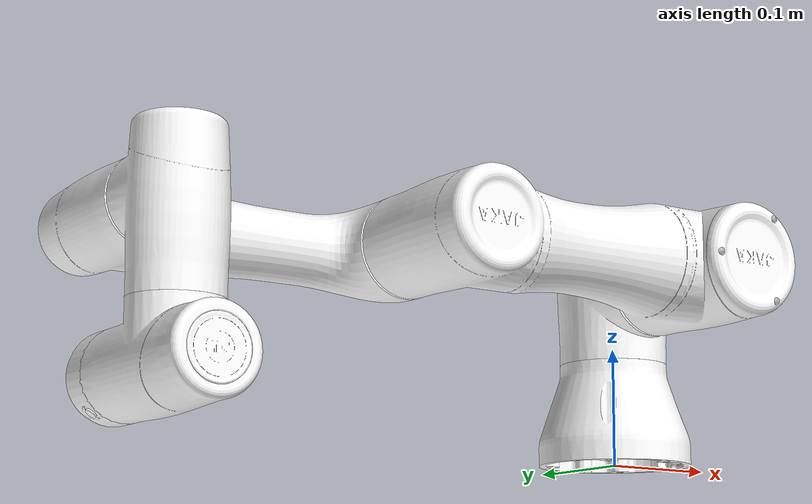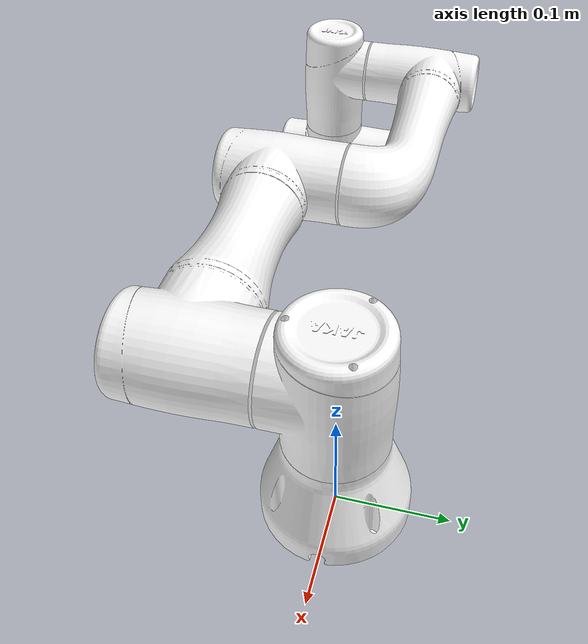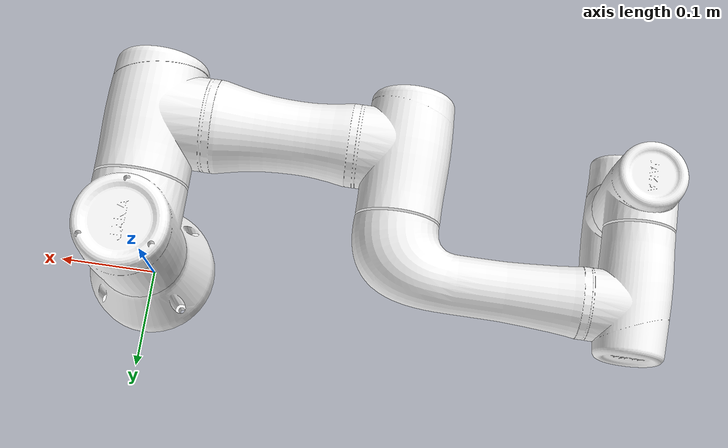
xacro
<?xml version="1.0" encoding="utf-8"?>

<robot name="jaka_zu3" xmlns:xacro="http://wiki.ros.org/xacro">

  <xacro:include filename="$(find jaka_description)/urdf/jaka_zu3/arm_body.xacro" />

  <!-- Macro for inertia matrix -->
  <xacro:macro name="sphere_inertial_matrix" params="m r">
    <inertial>
      <mass value="${m}" />
        <inertia ixx="${2*m*r*r/5}" ixy="0" ixz="0" iyy="${2*m*r*r/5}" iyz="0"  izz="${2*m*r*r/5}" />
    </inertial>
  </xacro:macro>

  <xacro:macro name="cylinder_inertial_matrix" params="m r h">
    <inertial>
      <mass value="${m}" />
        <inertia ixx="${m*(3*r*r+h*h)/12}" ixy = "0" ixz = "0" iyy="${m*(3*r*r+h*h)/12}" iyz = "0" izz="${m*r*r/2}" />
    </inertial>
  </xacro:macro>

  <xacro:macro name="box_inertial_matrix" params="m w h d">
    <inertial>
      <mass value="${m}" />
        <inertia ixx="${m*(h*h+d*d)/12}" ixy = "0" ixz = "0" iyy="${m*(w*w+d*d)/12}" iyz = "0" izz="${m*(w*w+h*h)/12}" />
    </inertial>
  </xacro:macro>

  <!-- ZU3 -->
  <link name="world" />

  <joint name="world_joint" type="fixed">
      <parent link="world" />
      <child link = "base_footprint" />
      <origin xyz="0 0 0" rpy="0 0 0" />
  </joint>

  <link name="base_footprint" >
    </link >

  <xacro:arm_body parent_prefix = "base_footprint">
    <origin xyz="0 0 0" rpy="0 0 0" />
  </xacro:arm_body>

</robot>

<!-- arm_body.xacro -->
<robot xmlns:xacro="http://ros.org/wiki/xacro" name="arm_body">
  <xacro:macro name="arm_body" params="parent_prefix *joint_pose">

  <xacro:arg name="default_velocity" default="1" />

  <link name="arm_base_link">
    <inertial>
      <origin
        xyz="-0.0015673 1.77850000000031E-05 0.05088"
        rpy="0 0 0" />
      <mass
        value="0.46392" />
      <inertia
        ixx="0.00064493"
        ixy="-9.92249999999993E-08"
        ixz="-1.0723E-05"
        iyy="0.00065156"
        iyz="-3.78539999999989E-07"
        izz="0.00083276" />
    </inertial>
    <visual>
      <origin
        xyz="0 0 0"
        rpy="1.5707963267949 0 0" />
      <geometry>
        <mesh
          filename="package://jaka_description/meshes/jaka_zu3_meshes/link_0.STL" />
      </geometry>
      <material
        name="">
        <color
          rgba="1 1 1 1" />
      </material>
    </visual>
    <collision>
      <origin
        xyz="0 0 0"
        rpy="1.5707963267949 0 0" />
      <geometry>
        <mesh
          filename="package://jaka_description/meshes/jaka_zu3_meshes/link_0.STL" />
      </geometry>
    </collision>
  </link>

  <joint name="arm_base_joint" type="fixed">
    <xacro:insert_block name="joint_pose"/>
    <parent link="${parent_prefix}" />
    <child link="arm_base_link" />
    <axis xyz="0 0 0" />
  </joint>

  <link name="shoulder_pan_link">
    <inertial>
      <origin
        xyz="-1.6776E-07 -0.0039623 -0.0033443"
        rpy="0 0 0" />
      <mass
        value="0.89667" />
      <inertia
        ixx="0.0016001"
        ixy="-1.969E-08"
        ixz="1.9711E-09"
        iyy="0.0015182"
        iyz="-1.1122E-05"
        izz="0.0010892" />
    </inertial>
    <visual>
      <origin
        xyz="0 0 0"
        rpy="1.5707963267949 0 0" />
      <geometry>
        <mesh
          filename="package://jaka_description/meshes/jaka_zu3_meshes/link_1.STL" />
      </geometry>
      <material
        name="">
        <color
          rgba="1 1 1 1" />
      </material>
    </visual>
    <collision>
      <origin
        xyz="0 0 0"
        rpy="1.5707963267949 0 0" />
      <geometry>
        <mesh
          filename="package://jaka_description/meshes/jaka_zu3_meshes/link_1.STL" />
      </geometry>
    </collision>
  </link>

  <joint name="shoulder_pan_joint" type="continuous">
    <origin xyz="0 0 0.15055" rpy="0 0 0" />
    <parent link="arm_base_link" />
    <child link="shoulder_pan_link" />
    <axis xyz="0 0 1" />
    <limit lower="-3" upper="3" effort="49" velocity="$(arg default_velocity)" />
  </joint>

  <link name="shoulder_lift_link">
    <inertial>
      <origin
        xyz="-0.11439 4.56850000071297E-08 0.11644"
        rpy="0 0 0" />
      <mass
        value="2.3246" />
      <inertia
        ixx="0.0032395"
        ixy="7.60910000001259E-09"
        ixz="-0.00020566"
        iyy="0.027696"
        iyz="-3.73300000063435E-10"
        izz="0.02666" />
    </inertial>
    <visual>
      <origin
        xyz="0 0 0"
        rpy="1.5707963267949 0 0" />
      <geometry>
        <mesh
          filename="package://jaka_description/meshes/jaka_zu3_meshes/link_2.STL" />
      </geometry>
      <material
        name="">
        <color
          rgba="1 1 1 1" />
      </material>
    </visual>
    <collision>
      <origin
        xyz="0 0 0"
        rpy="1.5707963267949 0 0" />
      <geometry>
        <mesh
          filename="package://jaka_description/meshes/jaka_zu3_meshes/link_2.STL" />
      </geometry>
    </collision>
  </link>

  <joint name="shoulder_lift_joint" type="continuous">
    <origin xyz="0 0 0" rpy="1.57079 0 0" />
    <parent link="shoulder_pan_link" />
    <child link="shoulder_lift_link" />
    <axis xyz="0 0 -1" />
    <limit lower="-3" upper="3" effort="49" velocity="$(arg default_velocity)" />
  </joint>

  <link name="elbow_link">
    <inertial>
      <origin
        xyz="-0.13616 5.15790000000444E-07 0.0072442"
        rpy="0 0 0" />
      <mass
        value="1.176" />
      <inertia
        ixx="0.0011462"
        ixy="-9.01440000000014E-08"
        ixz="2.3422E-05"
        iyy="0.010594"
        iyz="-7.30100000002853E-09"
        izz="0.010128" />
    </inertial>
    <visual>
      <origin
        xyz="0 0 0"
        rpy="1.5707963267949 0 0" />
      <geometry>
        <mesh
          filename="package://jaka_description/meshes/jaka_zu3_meshes/link_3.STL" />
      </geometry>
      <material
        name="">
        <color
          rgba="1 1 1 1" />
      </material>
    </visual>
    <collision>
      <origin
        xyz="0 0 0"
        rpy="1.5707963267949 0 0" />
      <geometry>
        <mesh
          filename="package://jaka_description/meshes/jaka_zu3_meshes/link_3.STL" />
      </geometry>
    </collision>
  </link>

  <joint name="elbow_joint" type="continuous">
    <origin xyz="-0.248 0 0" rpy="0 0 0" />
    <parent link="shoulder_lift_link" />
    <child link="elbow_link" />
    <axis xyz="0 0 -1" />
    <limit lower="-3" upper="3" effort="49" velocity="$(arg default_velocity)" />
  </joint>

  <link name="wrist_1_link">
    <inertial>
      <origin
        xyz="2.284E-08 -0.014052 -0.0031609"
        rpy="0 0 0" />
      <mass
        value="0.49334" />
      <inertia
        ixx="0.00074574"
        ixy="-4.47990000000001E-11"
        ixz="1.1613E-09"
        iyy="0.00032983"
        iyz="-2.5248E-05"
        izz="0.0007175" />
    </inertial>
    <visual>
      <origin
        xyz="0 0 0"
        rpy="1.5707963267949 0 0" />
      <geometry>
        <mesh
          filename="package://jaka_description/meshes/jaka_zu3_meshes/link_4.STL" />
      </geometry>
      <material
        name="">
        <color
          rgba="1 1 1 1" />
      </material>
    </visual>
    <collision>
      <origin
        xyz="0 0 0"
        rpy="1.5707963267949 0 0" />
      <geometry>
        <mesh
          filename="package://jaka_description/meshes/jaka_zu3_meshes/link_4.STL" />
      </geometry>
    </collision>
  </link>

  <joint name="wrist_1_joint" type="continuous">
    <origin xyz="-0.227796 0 0.1175" rpy="0 0 0" />
    <parent link="elbow_link" />
    <child link="wrist_1_link" />
    <axis xyz="0 0 -1" />
    <limit lower="-3" upper="3" effort="11" velocity="$(arg default_velocity)" />
  </joint>

  <link name="wrist_2_link">
    <inertial>
      <origin
        xyz="-8.4104E-09 0.0068633 -0.0029081"
        rpy="0 0 0" />
      <mass
        value="0.55083" />
      <inertia
        ixx="0.0010067"
        ixy="-1.5603E-09"
        ixz="-4.1167E-09"
        iyy="0.00036029"
        iyz="1.6676E-05"
        izz="0.00097818" />
    </inertial>
    <visual>
      <origin
        xyz="0 0 0"
        rpy="1.5707963267949 0 0" />
      <geometry>
        <mesh
          filename="package://jaka_description/meshes/jaka_zu3_meshes/link_5.STL" />
      </geometry>
      <material
        name="">
        <color
          rgba="1 1 1 1" />
      </material>
    </visual>
    <collision>
      <origin
        xyz="0 0 0"
        rpy="1.5707963267949 0 0" />
      <geometry>
        <mesh
          filename="package://jaka_description/meshes/jaka_zu3_meshes/link_5.STL" />
      </geometry>
    </collision>
  </link>

  <joint name="wrist_2_joint" type="continuous">
    <origin xyz="0 -0.1175 0" rpy="1.57079 3.1415926 0" />
    <parent link="wrist_1_link" />
    <child link="wrist_2_link" />
    <axis xyz="0 0 1" />
    <limit lower="-3" upper="3" effort="11" velocity="$(arg default_velocity)" />
  </joint>

  <link name="wrist_3_link">
    <inertial>
      <origin
        xyz="-4.9727E-05 2.9711999999999E-05 -0.016372"
        rpy="0 0 0" />
      <mass
        value="0.10033" />
      <inertia
        ixx="3.5902E-05"
        ixy="-8.8868E-08"
        ixz="5.6844E-08"
        iyy="3.6313E-05"
        iyz="7.66520000000013E-08"
        izz="5.8133E-05" />
    </inertial>
    <visual>
      <origin
        xyz="0 0 0"
        rpy="1.5707963267949 0 0" />
      <geometry>
        <mesh
          filename="package://jaka_description/meshes/jaka_zu3_meshes/link_6.STL" />
      </geometry>
      <material
        name="">
        <color
          rgba="1 1 1 1" />
      </material>
    </visual>
    <collision>
      <origin
        xyz="0 0 0"
        rpy="1.5707963267949 0 0" />
      <geometry>
        <mesh
          filename="package://jaka_description/meshes/jaka_zu3_meshes/link_6.STL" />
      </geometry>
    </collision>
  </link>

  <joint name="wrist_3_joint" type="continuous">
    <origin xyz="0 0.105 0" rpy="-1.57079 0 0" />
    <parent link="wrist_2_link" />
    <child link="wrist_3_link" />
    <axis xyz="0 0 1" />
    <limit lower="-3" upper="3" effort="11" velocity="$(arg default_velocity)" />
  </joint>

  <!-- Transmissions for ROS Control -->
  <xacro:macro name="transmission_block" params="joint_name">
    <transmission name="${joint_name}_trans">
      <type>transmission_interface/SimpleTransmission</type>
      <joint name="${joint_name}">
        <hardwareInterface>hardware_interface/PositionJointInterface</hardwareInterface>
      </joint>
      <actuator name="${joint_name}_motor">
        <hardwareInterface>hardware_interface/PositionJointInterface</hardwareInterface>
        <mechanicalReduction>1</mechanicalReduction>
      </actuator>
    </transmission>
  </xacro:macro>

  <xacro:transmission_block joint_name="shoulder_pan_joint"/>
  <xacro:transmission_block joint_name="shoulder_lift_joint"/>
  <xacro:transmission_block joint_name="elbow_joint"/>
  <xacro:transmission_block joint_name="wrist_1_joint"/>
  <xacro:transmission_block joint_name="wrist_2_joint"/>
  <xacro:transmission_block joint_name="wrist_3_joint"/>

	<!-- ros_control plugin -->
  <gazebo>
    <plugin name="gazebo_ros_control" filename="libgazebo_ros_control.so">
      <robotNamespace>/jaka_zu3</robotNamespace>
      <robotSimType>gazebo_ros_control/DefaultRobotHWSim</robotSimType>
      <legacyModeNS>true</legacyModeNS>
    </plugin>
  </gazebo>

  </xacro:macro>
</robot>
